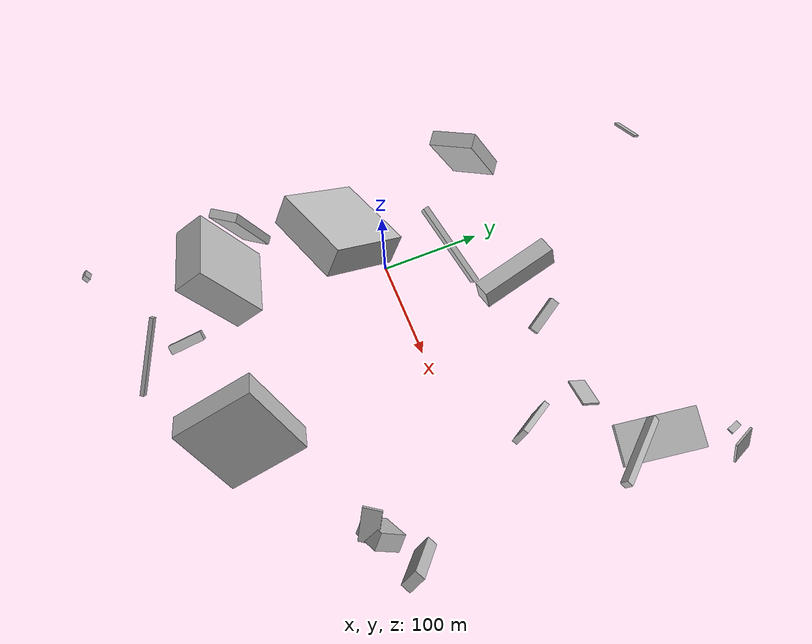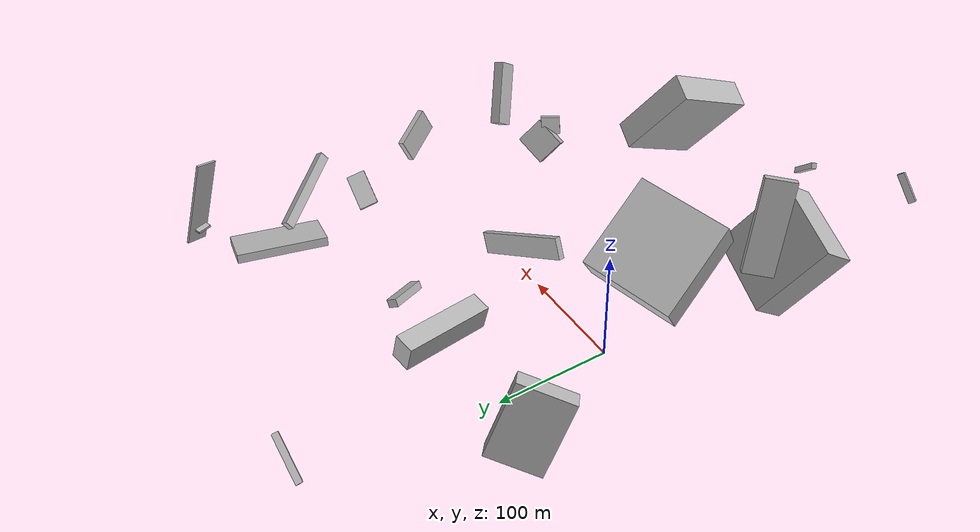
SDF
<sdf version="1.6">
 <world name="default">
  <scene>
   <sky><clouds><speed>12</speed></clouds></sky>
   <ambient>0.4 0.4 0.4 1</ambient>
   <background>0.7 0.7 0.7 1</background>
   <shadows>1</shadows>
  </scene>
  <gravity>0 0 -9.8066</gravity>
  <magnetic_field>6e-06 2.3e-05 -4.2e-05</magnetic_field>
  <physics default="0" name="default_physics" type="ode">
   <ode>
    <solver>
     <type>quick</type>
     <iters>10</iters>
     <sor>1.0</sor>
     <use_dynamic_moi_rescaling>0</use_dynamic_moi_rescaling>
    </solver>
    <constraints>
     <cfm>0</cfm>
     <erp>0.2</erp>
     <contact_max_correcting_vel>100</contact_max_correcting_vel>
     <contact_surface_layer>0.001</contact_surface_layer>
    </constraints>
   </ode>
   <max_step_size>0.004</max_step_size>
   <real_time_factor>1</real_time_factor>
   <real_time_update_rate>250</real_time_update_rate>
  </physics>
  <light name="sun" type="directional">
   <pose>0 0 10 0 0 0</pose>
   <diffuse>0.8 0.8 0.8 1</diffuse>
   <specular>0.2 0.2 0.2 1</specular>
   <attenuation>
    <range>1000</range>
    <constant>0.9</constant>
    <linear>0.01</linear>
    <quadratic>0.001</quadratic>
   </attenuation>
   <direction>-0.5 0.1 -0.9</direction>
  </light>
  <model name="building_1">
   <static>0</static>
   <pose>118.20368651365135 117.68132969764875 27.895138683799043 0.407145076385528 -0.22556629900943428 2.110429787507015</pose>
   <link name="link">
    <gravity>0</gravity>
    <pose>0 0 3.5 0 0 0</pose>
    <collision name="collision"><geometry><box><size>36 9 7</size></box></geometry></collision>
    <visual name="visual">
     <cast_shadows>0</cast_shadows>
     <geometry><box><size>36 9 7</size></box></geometry>
     <material>
      <script>
       <uri>model://HANNAS_wall/materials/scripts</uri>
       <uri>model://HANNAS_wall/materials/textures</uri>
       <name>vrc/HANNAS_wall</name>
      </script>
     </material>
    </visual>
   </link>
  </model>
  <model name="building_2">
   <static>0</static>
   <pose>68.6705251909816 113.83418900979431 18.46515605014144 -0.09857366114211279 0.21013303385210405 -2.9487332732725324</pose>
   <link name="link">
    <gravity>0</gravity>
    <pose>0 0 11.5 0 0 0</pose>
    <collision name="collision"><geometry><box><size>18 80 23</size></box></geometry></collision>
    <visual name="visual">
     <cast_shadows>0</cast_shadows>
     <geometry><box><size>18 80 23</size></box></geometry>
     <material>
      <script>
       <uri>model://HANNAS_wall/materials/scripts</uri>
       <uri>model://HANNAS_wall/materials/textures</uri>
       <name>vrc/HANNAS_wall</name>
      </script>
     </material>
    </visual>
   </link>
  </model>
  <model name="building_3">
   <static>0</static>
   <pose>34.54952600450581 -242.79927292336237 70.41275075654339 1.455520478030853 0.8976558974938453 2.3552668248342092</pose>
   <link name="link">
    <gravity>0</gravity>
    <pose>0 0 2.0 0 0 0</pose>
    <collision name="collision"><geometry><box><size>5 75 4</size></box></geometry></collision>
    <visual name="visual">
     <cast_shadows>0</cast_shadows>
     <geometry><box><size>5 75 4</size></box></geometry>
     <material>
      <script>
       <uri>model://HANNAS_wall/materials/scripts</uri>
       <uri>model://HANNAS_wall/materials/textures</uri>
       <name>vrc/HANNAS_wall</name>
      </script>
     </material>
    </visual>
   </link>
  </model>
  <model name="building_4">
   <static>0</static>
   <pose>243.09927875623453 -117.37953024639518 46.26268106662714 1.5877239138163393 0.5970624163733053 2.5453435277665624</pose>
   <link name="link">
    <gravity>0</gravity>
    <pose>0 0 9.0 0 0 0</pose>
    <collision name="collision"><geometry><box><size>2 41 18</size></box></geometry></collision>
    <visual name="visual">
     <cast_shadows>0</cast_shadows>
     <geometry><box><size>2 41 18</size></box></geometry>
     <material>
      <script>
       <uri>model://HANNAS_wall/materials/scripts</uri>
       <uri>model://HANNAS_wall/materials/textures</uri>
       <name>vrc/HANNAS_wall</name>
      </script>
     </material>
    </visual>
   </link>
  </model>
  <model name="building_5">
   <static>0</static>
   <pose>-52.78989306983749 -269.65239617513174 93.49751120007564 -2.666920547521092 -0.8584703137244453 0.06736164191177478</pose>
   <link name="link">
    <gravity>0</gravity>
    <pose>0 0 3.0 0 0 0</pose>
    <collision name="collision"><geometry><box><size>26 4 6</size></box></geometry></collision>
    <visual name="visual">
     <cast_shadows>0</cast_shadows>
     <geometry><box><size>26 4 6</size></box></geometry>
     <material>
      <script>
       <uri>model://HANNAS_wall/materials/scripts</uri>
       <uri>model://HANNAS_wall/materials/textures</uri>
       <name>vrc/HANNAS_wall</name>
      </script>
     </material>
    </visual>
   </link>
  </model>
  <model name="building_6">
   <static>0</static>
   <pose>161.96598678873136 -170.64664882869621 57.92976171279891 0.4575648182564841 -0.4908681384366385 -0.21343827383395506</pose>
   <link name="link">
    <gravity>0</gravity>
    <pose>0 0 40.0 0 0 0</pose>
    <collision name="collision"><geometry><box><size>25 79 80</size></box></geometry></collision>
    <visual name="visual">
     <cast_shadows>0</cast_shadows>
     <geometry><box><size>25 79 80</size></box></geometry>
     <material>
      <script>
       <uri>model://HANNAS_wall/materials/scripts</uri>
       <uri>model://HANNAS_wall/materials/textures</uri>
       <name>vrc/HANNAS_wall</name>
      </script>
     </material>
    </visual>
   </link>
  </model>
  <model name="building_7">
   <static>0</static>
   <pose>45.109000595180824 47.575146133029605 93.74955920150578 0.1589640889874758 0.41912162584507456 0.2907412623420256</pose>
   <link name="link">
    <gravity>0</gravity>
    <pose>0 0 8.5 0 0 0</pose>
    <collision name="collision"><geometry><box><size>80 5 17</size></box></geometry></collision>
    <visual name="visual">
     <cast_shadows>0</cast_shadows>
     <geometry><box><size>80 5 17</size></box></geometry>
     <material>
      <script>
       <uri>model://HANNAS_wall/materials/scripts</uri>
       <uri>model://HANNAS_wall/materials/textures</uri>
       <name>vrc/HANNAS_wall</name>
      </script>
     </material>
    </visual>
   </link>
  </model>
  <model name="building_8">
   <static>0</static>
   <pose>-45.54166591760211 -52.27464246477354 90.18605483711285 -1.3527562080532216 0.95439431152241 -1.0796844039828226</pose>
   <link name="link">
    <gravity>0</gravity>
    <pose>0 0 40.0 0 0 0</pose>
    <collision name="collision"><geometry><box><size>30 80 80</size></box></geometry></collision>
    <visual name="visual">
     <cast_shadows>0</cast_shadows>
     <geometry><box><size>30 80 80</size></box></geometry>
     <material>
      <script>
       <uri>model://HANNAS_wall/materials/scripts</uri>
       <uri>model://HANNAS_wall/materials/textures</uri>
       <name>vrc/HANNAS_wall</name>
      </script>
     </material>
    </visual>
   </link>
  </model>
  <model name="building_9">
   <static>0</static>
   <pose>249.39229800216143 -98.10669044960628 30.548469689479756 -2.2702228791701446 -0.7358326712862019 -1.8600100721548425</pose>
   <link name="link">
    <gravity>0</gravity>
    <pose>0 0 8.5 0 0 0</pose>
    <collision name="collision"><geometry><box><size>28 31 17</size></box></geometry></collision>
    <visual name="visual">
     <cast_shadows>0</cast_shadows>
     <geometry><box><size>28 31 17</size></box></geometry>
     <material>
      <script>
       <uri>model://HANNAS_wall/materials/scripts</uri>
       <uri>model://HANNAS_wall/materials/textures</uri>
       <name>vrc/HANNAS_wall</name>
      </script>
     </material>
    </visual>
   </link>
  </model>
  <model name="building_10">
   <static>0</static>
   <pose>301.239776635264 -81.78418121827775 63.867724489798775 1.07504480695947 -0.8970327267370575 -0.6778691850880826</pose>
   <link name="link">
    <gravity>0</gravity>
    <pose>0 0 5.0 0 0 0</pose>
    <collision name="collision"><geometry><box><size>60 18 10</size></box></geometry></collision>
    <visual name="visual">
     <cast_shadows>0</cast_shadows>
     <geometry><box><size>60 18 10</size></box></geometry>
     <material>
      <script>
       <uri>model://HANNAS_wall/materials/scripts</uri>
       <uri>model://HANNAS_wall/materials/textures</uri>
       <name>vrc/HANNAS_wall</name>
      </script>
     </material>
    </visual>
   </link>
  </model>
  <model name="building_11">
   <static>0</static>
   <pose>-20.619144153372265 270.7138422346651 70.26637256427462 -2.569322146252635 -0.2821758796592627 -1.7102155581729377</pose>
   <link name="link">
    <gravity>0</gravity>
    <pose>0 0 1.0 0 0 0</pose>
    <collision name="collision"><geometry><box><size>5 37 2</size></box></geometry></collision>
    <visual name="visual">
     <cast_shadows>0</cast_shadows>
     <geometry><box><size>5 37 2</size></box></geometry>
     <material>
      <script>
       <uri>model://HANNAS_wall/materials/scripts</uri>
       <uri>model://HANNAS_wall/materials/textures</uri>
       <name>vrc/HANNAS_wall</name>
      </script>
     </material>
    </visual>
   </link>
  </model>
  <model name="building_12">
   <static>0</static>
   <pose>246.1569235981852 174.80879230738324 14.685679352259763 2.827529059773853 1.3585284062257592 2.66963566097222</pose>
   <link name="link">
    <gravity>0</gravity>
    <pose>0 0 20.0 0 0 0</pose>
    <collision name="collision"><geometry><box><size>8 80 40</size></box></geometry></collision>
    <visual name="visual">
     <cast_shadows>0</cast_shadows>
     <geometry><box><size>8 80 40</size></box></geometry>
     <material>
      <script>
       <uri>model://HANNAS_wall/materials/scripts</uri>
       <uri>model://HANNAS_wall/materials/textures</uri>
       <name>vrc/HANNAS_wall</name>
      </script>
     </material>
    </visual>
   </link>
  </model>
  <model name="building_13">
   <static>0</static>
   <pose>-29.481647636365537 -169.91424776274778 49.3620827779247 0.9477515143008186 0.2550563341327991 2.9006598044989067</pose>
   <link name="link">
    <gravity>0</gravity>
    <pose>0 0 16.5 0 0 0</pose>
    <collision name="collision"><geometry><box><size>73 77 33</size></box></geometry></collision>
    <visual name="visual">
     <cast_shadows>0</cast_shadows>
     <geometry><box><size>73 77 33</size></box></geometry>
     <material>
      <script>
       <uri>model://HANNAS_wall/materials/scripts</uri>
       <uri>model://HANNAS_wall/materials/textures</uri>
       <name>vrc/HANNAS_wall</name>
      </script>
     </material>
    </visual>
   </link>
  </model>
  <model name="building_14">
   <static>0</static>
   <pose>-62.24342478795558 109.75800338061583 48.60321869857907 0.9526713566107435 -1.143326290236631 -1.647428481313601</pose>
   <link name="link">
    <gravity>0</gravity>
    <pose>0 0 7.5 0 0 0</pose>
    <collision name="collision"><geometry><box><size>66 46 15</size></box></geometry></collision>
    <visual name="visual">
     <cast_shadows>0</cast_shadows>
     <geometry><box><size>66 46 15</size></box></geometry>
     <material>
      <script>
       <uri>model://HANNAS_wall/materials/scripts</uri>
       <uri>model://HANNAS_wall/materials/textures</uri>
       <name>vrc/HANNAS_wall</name>
      </script>
     </material>
    </visual>
   </link>
  </model>
  <model name="building_15">
   <static>0</static>
   <pose>227.34410877522404 43.475889930352466 100.22106521425574 1.7596308510649072 0.34871236762880303 2.1368893091187537</pose>
   <link name="link">
    <gravity>0</gravity>
    <pose>0 0 2.5 0 0 0</pose>
    <collision name="collision"><geometry><box><size>38 22 5</size></box></geometry></collision>
    <visual name="visual">
     <cast_shadows>0</cast_shadows>
     <geometry><box><size>38 22 5</size></box></geometry>
     <material>
      <script>
       <uri>model://HANNAS_wall/materials/scripts</uri>
       <uri>model://HANNAS_wall/materials/textures</uri>
       <name>vrc/HANNAS_wall</name>
      </script>
     </material>
    </visual>
   </link>
  </model>
  <model name="building_16">
   <static>0</static>
   <pose>16.65835141249622 -209.4819160263859 30.437153967138563 2.6401896818361967 0.0860443546494136 -1.498543313601141</pose>
   <link name="link">
    <gravity>0</gravity>
    <pose>0 0 9.5 0 0 0</pose>
    <collision name="collision"><geometry><box><size>33 9 19</size></box></geometry></collision>
    <visual name="visual">
     <cast_shadows>0</cast_shadows>
     <geometry><box><size>33 9 19</size></box></geometry>
     <material>
      <script>
       <uri>model://HANNAS_wall/materials/scripts</uri>
       <uri>model://HANNAS_wall/materials/textures</uri>
       <name>vrc/HANNAS_wall</name>
      </script>
     </material>
    </visual>
   </link>
  </model>
  <model name="building_17">
   <static>0</static>
   <pose>201.3820721428226 106.83261239756493 65.14062410652551 1.0456810464620938 0.2984989002028443 1.3333152017709005</pose>
   <link name="link">
    <gravity>0</gravity>
    <pose>0 0 16.0 0 0 0</pose>
    <collision name="collision"><geometry><box><size>16 2 32</size></box></geometry></collision>
    <visual name="visual">
     <cast_shadows>0</cast_shadows>
     <geometry><box><size>16 2 32</size></box></geometry>
     <material>
      <script>
       <uri>model://HANNAS_wall/materials/scripts</uri>
       <uri>model://HANNAS_wall/materials/textures</uri>
       <name>vrc/HANNAS_wall</name>
      </script>
     </material>
    </visual>
   </link>
  </model>
  <model name="building_18">
   <static>0</static>
   <pose>275.9431137385227 133.87894078532037 42.75723966796898 0.3662868210779619 -0.5296546861454733 -2.6328493232064343</pose>
   <link name="link">
    <gravity>0</gravity>
    <pose>0 0 4.5 0 0 0</pose>
    <collision name="collision"><geometry><box><size>7 80 9</size></box></geometry></collision>
    <visual name="visual">
     <cast_shadows>0</cast_shadows>
     <geometry><box><size>7 80 9</size></box></geometry>
     <material>
      <script>
       <uri>model://HANNAS_wall/materials/scripts</uri>
       <uri>model://HANNAS_wall/materials/textures</uri>
       <name>vrc/HANNAS_wall</name>
      </script>
     </material>
    </visual>
   </link>
  </model>
  <model name="building_19">
   <static>0</static>
   <pose>-32.95861691522834 -134.20940927788465 142.21463443214174 -3.0063153867381485 0.29224332902005945 -0.6365511710451994</pose>
   <link name="link">
    <gravity>0</gravity>
    <pose>0 0 40.0 0 0 0</pose>
    <collision name="collision"><geometry><box><size>8 26 80</size></box></geometry></collision>
    <visual name="visual">
     <cast_shadows>0</cast_shadows>
     <geometry><box><size>8 26 80</size></box></geometry>
     <material>
      <script>
       <uri>model://HANNAS_wall/materials/scripts</uri>
       <uri>model://HANNAS_wall/materials/textures</uri>
       <name>vrc/HANNAS_wall</name>
      </script>
     </material>
    </visual>
   </link>
  </model>
  <model name="building_20">
   <static>0</static>
   <pose>286.1908423510522 235.32874991466625 35.08365606998031 -1.5239323621299625 0.06675677185645813 -2.8085876189538457</pose>
   <link name="link">
    <gravity>0</gravity>
    <pose>0 0 6.0 0 0 0</pose>
    <collision name="collision"><geometry><box><size>6 2 12</size></box></geometry></collision>
    <visual name="visual">
     <cast_shadows>0</cast_shadows>
     <geometry><box><size>6 2 12</size></box></geometry>
     <material>
      <script>
       <uri>model://HANNAS_wall/materials/scripts</uri>
       <uri>model://HANNAS_wall/materials/textures</uri>
       <name>vrc/HANNAS_wall</name>
      </script>
     </material>
    </visual>
   </link>
  </model>
  <model name="building_21">
   <static>0</static>
   <pose>308.49661346381816 222.4779299735147 48.574634764709124 2.115429939553667 -1.2676246605668375 -1.6904732057438407</pose>
   <link name="link">
    <gravity>0</gravity>
    <pose>0 0 1.0 0 0 0</pose>
    <collision name="collision"><geometry><box><size>80 20 2</size></box></geometry></collision>
    <visual name="visual">
     <cast_shadows>0</cast_shadows>
     <geometry><box><size>80 20 2</size></box></geometry>
     <material>
      <script>
       <uri>model://HANNAS_wall/materials/scripts</uri>
       <uri>model://HANNAS_wall/materials/textures</uri>
       <name>vrc/HANNAS_wall</name>
      </script>
     </material>
    </visual>
   </link>
  </model>
 </world>
</sdf>
